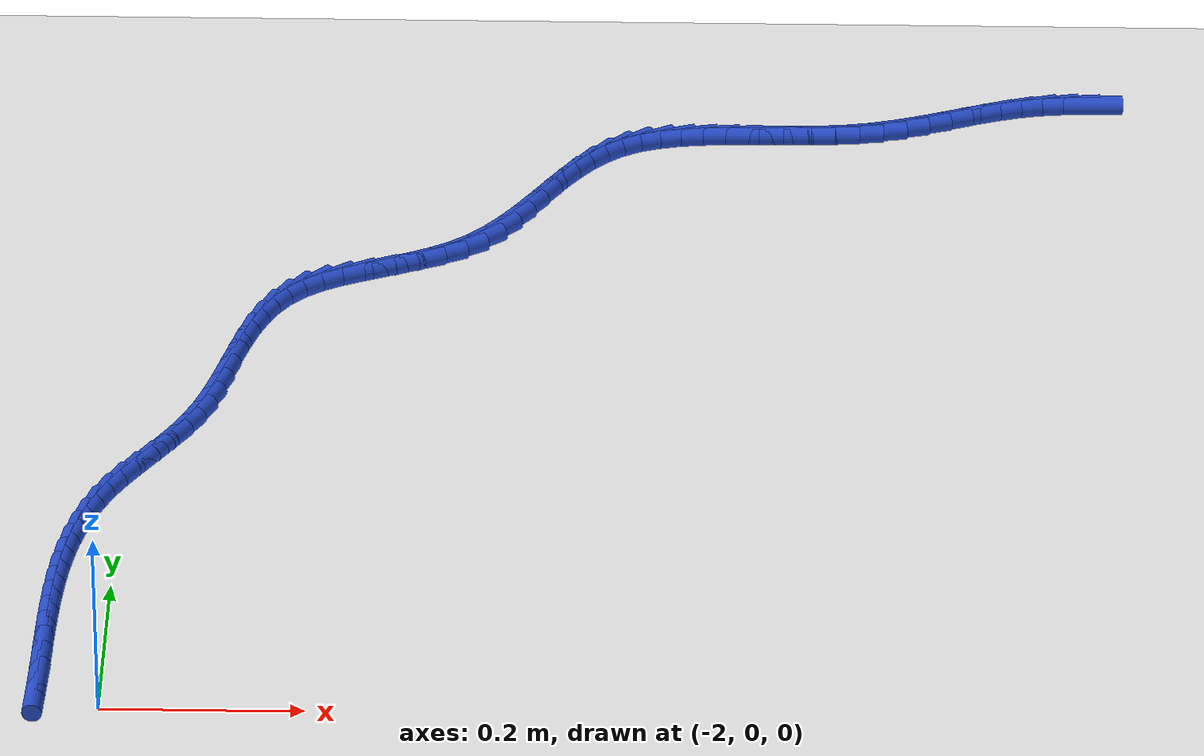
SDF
<sdf version="1.6">
 <world name="default">
  <model name="ground_plane">
   <static>1</static>
   <link name="link">
    <collision name="collision">
     <geometry><plane><normal>0 0 1</normal><size>100 100</size></plane></geometry>
     <surface><friction><ode><mu>100</mu><mu2>50</mu2></ode></friction></surface>
    </collision>
    <visual name="visual">
     <cast_shadows>0</cast_shadows>
     <geometry><plane><normal>0 0 1</normal><size>100 100</size></plane></geometry>
     <material>
      <script><uri>file://media/materials/scripts/gazebo.material</uri><name>Gazebo/WhiteGlow</name></script>
     </material>
    </visual>
   </link>
  </model>
  <model name="line">
   <link name="link_69">
    <pose>-1.024966327656244 1.0643499774241265 0.01 0 1.57 0.026791510075852655</pose>
    <collision name="collision">
     <geometry><cylinder><radius>0.01</radius><length>0.08</length></cylinder></geometry>
    </collision>
    <visual name="visual">
     <material>
      <script><name>Gazebo/Blue</name><uri>file://media/materials/scripts/gazebo.material</uri></script>
     </material>
     <geometry><cylinder><radius>0.01</radius><length>0.08</length></cylinder></geometry>
    </visual>
   </link>
   <link name="link_70">
    <pose>-1.0480095541099272 1.0637324668367272 0.01 0 1.57 0.10267569243208971</pose>
    <collision name="collision">
     <geometry><cylinder><radius>0.01</radius><length>0.08</length></cylinder></geometry>
    </collision>
    <visual name="visual">
     <material>
      <script><name>Gazebo/Blue</name><uri>file://media/materials/scripts/gazebo.material</uri></script>
     </material>
     <geometry><cylinder><radius>0.01</radius><length>0.08</length></cylinder></geometry>
    </visual>
   </link>
   <link name="link_71">
    <pose>-1.070793348231914 1.061384869505074 0.01 0 1.57 0.1888888307071484</pose>
    <collision name="collision">
     <geometry><cylinder><radius>0.01</radius><length>0.08</length></cylinder></geometry>
    </collision>
    <visual name="visual">
     <material>
      <script><name>Gazebo/Blue</name><uri>file://media/materials/scripts/gazebo.material</uri></script>
     </material>
     <geometry><cylinder><radius>0.01</radius><length>0.08</length></cylinder></geometry>
    </visual>
   </link>
   <link name="link_72">
    <pose>-1.0933150167962022 1.057079451329948 0.01 0 1.57 0.26054772362553597</pose>
    <collision name="collision">
     <geometry><cylinder><radius>0.01</radius><length>0.08</length></cylinder></geometry>
    </collision>
    <visual name="visual">
     <material>
      <script><name>Gazebo/Blue</name><uri>file://media/materials/scripts/gazebo.material</uri></script>
     </material>
     <geometry><cylinder><radius>0.01</radius><length>0.08</length></cylinder></geometry>
    </visual>
   </link>
   <link name="link_73">
    <pose>-1.115662799674517 1.0511213511318878 0.01 0 1.57 0.3091893438283618</pose>
    <collision name="collision">
     <geometry><cylinder><radius>0.01</radius><length>0.08</length></cylinder></geometry>
    </collision>
    <visual name="visual">
     <material>
      <script><name>Gazebo/Blue</name><uri>file://media/materials/scripts/gazebo.material</uri></script>
     </material>
     <geometry><cylinder><radius>0.01</radius><length>0.08</length></cylinder></geometry>
    </visual>
   </link>
   <link name="link_74">
    <pose>-1.13795638952707 1.0440000227900315 0.01 0 1.57 0.3354484398593318</pose>
    <collision name="collision">
     <geometry><cylinder><radius>0.01</radius><length>0.08</length></cylinder></geometry>
    </collision>
    <visual name="visual">
     <material>
      <script><name>Gazebo/Blue</name><uri>file://media/materials/scripts/gazebo.material</uri></script>
     </material>
     <geometry><cylinder><radius>0.01</radius><length>0.08</length></cylinder></geometry>
    </visual>
   </link>
   <link name="link_75">
    <pose>-1.160315509272435 1.0362050974991623 0.01 0 1.57 0.34016222303935134</pose>
    <collision name="collision">
     <geometry><cylinder><radius>0.01</radius><length>0.08</length></cylinder></geometry>
    </collision>
    <visual name="visual">
     <material>
      <script><name>Gazebo/Blue</name><uri>file://media/materials/scripts/gazebo.material</uri></script>
     </material>
     <geometry><cylinder><radius>0.01</radius><length>0.08</length></cylinder></geometry>
    </visual>
   </link>
   <link name="link_76">
    <pose>-1.1828598818291856 1.0282262064540642 0.01 0 1.57 0.32398520939989317</pose>
    <collision name="collision">
     <geometry><cylinder><radius>0.01</radius><length>0.08</length></cylinder></geometry>
    </collision>
    <visual name="visual">
     <material>
      <script><name>Gazebo/Blue</name><uri>file://media/materials/scripts/gazebo.material</uri></script>
     </material>
     <geometry><cylinder><radius>0.01</radius><length>0.08</length></cylinder></geometry>
    </visual>
   </link>
   <link name="link_77">
    <pose>-1.2057092301158945 1.020552980849521 0.01 0 1.57 0.28734096503087814</pose>
    <collision name="collision">
     <geometry><cylinder><radius>0.01</radius><length>0.08</length></cylinder></geometry>
    </collision>
    <visual name="visual">
     <material>
      <script><name>Gazebo/Blue</name><uri>file://media/materials/scripts/gazebo.material</uri></script>
     </material>
     <geometry><cylinder><radius>0.01</radius><length>0.08</length></cylinder></geometry>
    </visual>
   </link>
   <link name="link_78">
    <pose>-1.2289832770511357 1.0136750518803168 0.01 0 1.57 0.23063931927939935</pose>
    <collision name="collision">
     <geometry><cylinder><radius>0.01</radius><length>0.08</length></cylinder></geometry>
    </collision>
    <visual name="visual">
     <material>
      <script><name>Gazebo/Blue</name><uri>file://media/materials/scripts/gazebo.material</uri></script>
     </material>
     <geometry><cylinder><radius>0.01</radius><length>0.08</length></cylinder></geometry>
    </visual>
   </link>
   <link name="link_79">
    <pose>-1.252801745553482 1.0080820507412351 0.01 0 1.57 0.15649613241592322</pose>
    <collision name="collision">
     <geometry><cylinder><radius>0.01</radius><length>0.08</length></cylinder></geometry>
    </collision>
    <visual name="visual">
     <material>
      <script><name>Gazebo/Blue</name><uri>file://media/materials/scripts/gazebo.material</uri></script>
     </material>
     <geometry><cylinder><radius>0.01</radius><length>0.08</length></cylinder></geometry>
    </visual>
   </link>
   <link name="link_80">
    <pose>-1.2772688846782452 1.0042214699730987 0.01 0 1.57 0.0888577264555757</pose>
    <collision name="collision">
     <geometry><cylinder><radius>0.01</radius><length>0.08</length></cylinder></geometry>
    </collision>
    <visual name="visual">
     <material>
      <script><name>Gazebo/Blue</name><uri>file://media/materials/scripts/gazebo.material</uri></script>
     </material>
     <geometry><cylinder><radius>0.01</radius><length>0.08</length></cylinder></geometry>
    </visual>
   </link>
   <link name="link_81">
    <pose>-1.3022875977666921 1.0019924944816272 0.01 0 1.57 0.04267920627427439</pose>
    <collision name="collision">
     <geometry><cylinder><radius>0.01</radius><length>0.08</length></cylinder></geometry>
    </collision>
    <visual name="visual">
     <material>
      <script><name>Gazebo/Blue</name><uri>file://media/materials/scripts/gazebo.material</uri></script>
     </material>
     <geometry><cylinder><radius>0.01</radius><length>0.08</length></cylinder></geometry>
    </visual>
   </link>
   <link name="link_82">
    <pose>-1.3276199124928658 1.0009106744659109 0.01 0 1.57 0.016805935759140193</pose>
    <collision name="collision">
     <geometry><cylinder><radius>0.01</radius><length>0.08</length></cylinder></geometry>
    </collision>
    <visual name="visual">
     <material>
      <script><name>Gazebo/Blue</name><uri>file://media/materials/scripts/gazebo.material</uri></script>
     </material>
     <geometry><cylinder><radius>0.01</radius><length>0.08</length></cylinder></geometry>
    </visual>
   </link>
   <link name="link_83">
    <pose>-1.3530249623427748 1.0004836786292584 0.01 0 1.57 0.010480410688180071</pose>
    <collision name="collision">
     <geometry><cylinder><radius>0.01</radius><length>0.08</length></cylinder></geometry>
    </collision>
    <visual name="visual">
     <material>
      <script><name>Gazebo/Blue</name><uri>file://media/materials/scripts/gazebo.material</uri></script>
     </material>
     <geometry><cylinder><radius>0.01</radius><length>0.08</length></cylinder></geometry>
    </visual>
   </link>
   <link name="link_84">
    <pose>-1.3782618808024298 1.0002191756749788 0.01 0 1.57 0.023933856140754307</pose>
    <collision name="collision">
     <geometry><cylinder><radius>0.01</radius><length>0.08</length></cylinder></geometry>
    </collision>
    <visual name="visual">
     <material>
      <script><name>Gazebo/Blue</name><uri>file://media/materials/scripts/gazebo.material</uri></script>
     </material>
     <geometry><cylinder><radius>0.01</radius><length>0.08</length></cylinder></geometry>
    </visual>
   </link>
   <link name="link_85">
    <pose>-1.4030898013578403 0.9996248343063804 0.01 0 1.57 0.05851974725280542</pose>
    <collision name="collision">
     <geometry><cylinder><radius>0.01</radius><length>0.08</length></cylinder></geometry>
    </collision>
    <visual name="visual">
     <material>
      <script><name>Gazebo/Blue</name><uri>file://media/materials/scripts/gazebo.material</uri></script>
     </material>
     <geometry><cylinder><radius>0.01</radius><length>0.08</length></cylinder></geometry>
    </visual>
   </link>
   <link name="link_86">
    <pose>-1.427267857495016 0.998208323226772 0.01 0 1.57 0.11674136899573795</pose>
    <collision name="collision">
     <geometry><cylinder><radius>0.01</radius><length>0.08</length></cylinder></geometry>
    </collision>
    <visual name="visual">
     <material>
      <script><name>Gazebo/Blue</name><uri>file://media/materials/scripts/gazebo.material</uri></script>
     </material>
     <geometry><cylinder><radius>0.01</radius><length>0.08</length></cylinder></geometry>
    </visual>
   </link>
   <link name="link_87">
    <pose>-1.4505551826999667 0.9954773111394623 0.01 0 1.57 0.20202187500401422</pose>
    <collision name="collision">
     <geometry><cylinder><radius>0.01</radius><length>0.08</length></cylinder></geometry>
    </collision>
    <visual name="visual">
     <material>
      <script><name>Gazebo/Blue</name><uri>file://media/materials/scripts/gazebo.material</uri></script>
     </material>
     <geometry><cylinder><radius>0.01</radius><length>0.08</length></cylinder></geometry>
    </visual>
   </link>
   <link name="link_88">
    <pose>-1.4727109104587022 0.99093946674776 0.01 0 1.57 0.3178157226432535</pose>
    <collision name="collision">
     <geometry><cylinder><radius>0.01</radius><length>0.08</length></cylinder></geometry>
    </collision>
    <visual name="visual">
     <material>
      <script><name>Gazebo/Blue</name><uri>file://media/materials/scripts/gazebo.material</uri></script>
     </material>
     <geometry><cylinder><radius>0.01</radius><length>0.08</length></cylinder></geometry>
    </visual>
   </link>
   <link name="link_89">
    <pose>-1.4934941742572316 0.9841024587549738 0.01 0 1.57 0.4654628126858873</pose>
    <collision name="collision">
     <geometry><cylinder><radius>0.01</radius><length>0.08</length></cylinder></geometry>
    </collision>
    <visual name="visual">
     <material>
      <script><name>Gazebo/Blue</name><uri>file://media/materials/scripts/gazebo.material</uri></script>
     </material>
     <geometry><cylinder><radius>0.01</radius><length>0.08</length></cylinder></geometry>
    </visual>
   </link>
   <link name="link_90">
    <pose>-1.5126641075815659 0.9744739558644124 0.01 0 1.57 0.6335347217561635</pose>
    <collision name="collision">
     <geometry><cylinder><radius>0.01</radius><length>0.08</length></cylinder></geometry>
    </collision>
    <visual name="visual">
     <material>
      <script><name>Gazebo/Blue</name><uri>file://media/materials/scripts/gazebo.material</uri></script>
     </material>
     <geometry><cylinder><radius>0.01</radius><length>0.08</length></cylinder></geometry>
    </visual>
   </link>
   <link name="link_91">
    <pose>-1.5300584234287136 0.9616970907524526 0.01 0 1.57 0.7757689154828349</pose>
    <collision name="collision">
     <geometry><cylinder><radius>0.01</radius><length>0.08</length></cylinder></geometry>
    </collision>
    <visual name="visual">
     <material>
      <script><name>Gazebo/Blue</name><uri>file://media/materials/scripts/gazebo.material</uri></script>
     </material>
     <geometry><cylinder><radius>0.01</radius><length>0.08</length></cylinder></geometry>
    </visual>
   </link>
   <link name="link_92">
    <pose>-1.54592910069723 0.9461291530584748 0.01 0 1.57 0.8784203698464145</pose>
    <collision name="collision">
     <geometry><cylinder><radius>0.01</radius><length>0.08</length></cylinder></geometry>
    </collision>
    <visual name="visual">
     <material>
      <script><name>Gazebo/Blue</name><uri>file://media/materials/scripts/gazebo.material</uri></script>
     </material>
     <geometry><cylinder><radius>0.01</radius><length>0.08</length></cylinder></geometry>
    </visual>
   </link>
   <link name="link_93">
    <pose>-1.5606641431018593 0.9283619269077942 0.01 0 1.57 0.9454900321794707</pose>
    <collision name="collision">
     <geometry><cylinder><radius>0.01</radius><length>0.08</length></cylinder></geometry>
    </collision>
    <visual name="visual">
     <material>
      <script><name>Gazebo/Blue</name><uri>file://media/materials/scripts/gazebo.material</uri></script>
     </material>
     <geometry><cylinder><radius>0.01</radius><length>0.08</length></cylinder></geometry>
    </visual>
   </link>
   <link name="link_94">
    <pose>-1.5746516349002806 0.9089873352744621 0.01 0 1.57 0.9816175099446475</pose>
    <collision name="collision">
     <geometry><cylinder><radius>0.01</radius><length>0.08</length></cylinder></geometry>
    </collision>
    <visual name="visual">
     <material>
      <script><name>Gazebo/Blue</name><uri>file://media/materials/scripts/gazebo.material</uri></script>
     </material>
     <geometry><cylinder><radius>0.01</radius><length>0.08</length></cylinder></geometry>
    </visual>
   </link>
   <link name="link_95">
    <pose>-1.588279660350172 0.8885973011325302 0.01 0 1.57 0.9901155798187474</pose>
    <collision name="collision">
     <geometry><cylinder><radius>0.01</radius><length>0.08</length></cylinder></geometry>
    </collision>
    <visual name="visual">
     <material>
      <script><name>Gazebo/Blue</name><uri>file://media/materials/scripts/gazebo.material</uri></script>
     </material>
     <geometry><cylinder><radius>0.01</radius><length>0.08</length></cylinder></geometry>
    </visual>
   </link>
   <link name="link_96">
    <pose>-1.601936303709213 0.8677837474560517 0.01 0 1.57 0.972473108362709</pose>
    <collision name="collision">
     <geometry><cylinder><radius>0.01</radius><length>0.08</length></cylinder></geometry>
    </collision>
    <visual name="visual">
     <material>
      <script><name>Gazebo/Blue</name><uri>file://media/materials/scripts/gazebo.material</uri></script>
     </material>
     <geometry><cylinder><radius>0.01</radius><length>0.08</length></cylinder></geometry>
    </visual>
   </link>
   <link name="link_97">
    <pose>-1.6160096492350815 0.8471385972190775 0.01 0 1.57 0.9284383233214376</pose>
    <collision name="collision">
     <geometry><cylinder><radius>0.01</radius><length>0.08</length></cylinder></geometry>
    </collision>
    <visual name="visual">
     <material>
      <script><name>Gazebo/Blue</name><uri>file://media/materials/scripts/gazebo.material</uri></script>
     </material>
     <geometry><cylinder><radius>0.01</radius><length>0.08</length></cylinder></geometry>
    </visual>
   </link>
   <link name="link_98">
    <pose>-1.6308877811854559 0.8272537733956599 0.01 0 1.57 0.8564148735485906</pose>
    <collision name="collision">
     <geometry><cylinder><radius>0.01</radius><length>0.08</length></cylinder></geometry>
    </collision>
    <visual name="visual">
     <material>
      <script><name>Gazebo/Blue</name><uri>file://media/materials/scripts/gazebo.material</uri></script>
     </material>
     <geometry><cylinder><radius>0.01</radius><length>0.08</length></cylinder></geometry>
    </visual>
   </link>
   <link name="link_99">
    <pose>-1.6469587838180153 0.8087211989598504 0.01 0 1.57 0.7543466889783089</pose>
    <collision name="collision">
     <geometry><cylinder><radius>0.01</radius><length>0.08</length></cylinder></geometry>
    </collision>
    <visual name="visual">
     <material>
      <script><name>Gazebo/Blue</name><uri>file://media/materials/scripts/gazebo.material</uri></script>
     </material>
     <geometry><cylinder><radius>0.01</radius><length>0.08</length></cylinder></geometry>
    </visual>
   </link>
   <link name="link_100">
    <pose>-1.664610741390439 0.7921327968857014 0.01 0 1.57 0.6228536616621777</pose>
    <collision name="collision">
     <geometry><cylinder><radius>0.01</radius><length>0.08</length></cylinder></geometry>
    </collision>
    <visual name="visual">
     <material>
      <script><name>Gazebo/Blue</name><uri>file://media/materials/scripts/gazebo.material</uri></script>
     </material>
     <geometry><cylinder><radius>0.01</radius><length>0.08</length></cylinder></geometry>
    </visual>
   </link>
   <link name="link_101">
    <pose>-1.6842115002194564 0.7780550244476622 0.01 0 1.57 0.497470086878927</pose>
    <collision name="collision">
     <geometry><cylinder><radius>0.01</radius><length>0.08</length></cylinder></geometry>
    </collision>
    <visual name="visual">
     <material>
      <script><name>Gazebo/Blue</name><uri>file://media/materials/scripts/gazebo.material</uri></script>
     </material>
     <geometry><cylinder><radius>0.01</radius><length>0.08</length></cylinder></geometry>
    </visual>
   </link>
   <link name="link_102">
    <pose>-1.7056287504908847 0.7664249850833975 0.01 0 1.57 0.41317296959928274</pose>
    <collision name="collision">
     <geometry><cylinder><radius>0.01</radius><length>0.08</length></cylinder></geometry>
    </collision>
    <visual name="visual">
     <material>
      <script><name>Gazebo/Blue</name><uri>file://media/materials/scripts/gazebo.material</uri></script>
     </material>
     <geometry><cylinder><radius>0.01</radius><length>0.08</length></cylinder></geometry>
    </visual>
   </link>
   <link name="link_103">
    <pose>-1.7282099633938366 0.7565251829938393 0.01 0 1.57 0.36887653105125884</pose>
    <collision name="collision">
     <geometry><cylinder><radius>0.01</radius><length>0.08</length></cylinder></geometry>
    </collision>
    <visual name="visual">
     <material>
      <script><name>Gazebo/Blue</name><uri>file://media/materials/scripts/gazebo.material</uri></script>
     </material>
     <geometry><cylinder><radius>0.01</radius><length>0.08</length></cylinder></geometry>
    </visual>
   </link>
   <link name="link_104">
    <pose>-1.7512783576575346 0.7476076051519172 0.01 0 1.57 0.36274304321403195</pose>
    <collision name="collision">
     <geometry><cylinder><radius>0.01</radius><length>0.08</length></cylinder></geometry>
    </collision>
    <visual name="visual">
     <material>
      <script><name>Gazebo/Blue</name><uri>file://media/materials/scripts/gazebo.material</uri></script>
     </material>
     <geometry><cylinder><radius>0.01</radius><length>0.08</length></cylinder></geometry>
    </visual>
   </link>
   <link name="link_105">
    <pose>-1.7741571520112 0.7389242385305604 0.01 0 1.57 0.3957711940820424</pose>
    <collision name="collision">
     <geometry><cylinder><radius>0.01</radius><length>0.08</length></cylinder></geometry>
    </collision>
    <visual name="visual">
     <material>
      <script><name>Gazebo/Blue</name><uri>file://media/materials/scripts/gazebo.material</uri></script>
     </material>
     <geometry><cylinder><radius>0.01</radius><length>0.08</length></cylinder></geometry>
    </visual>
   </link>
   <link name="link_106">
    <pose>-1.7961695651840552 0.7297270701026988 0.01 0 1.57 0.47237769384059136</pose>
    <collision name="collision">
     <geometry><cylinder><radius>0.01</radius><length>0.08</length></cylinder></geometry>
    </collision>
    <visual name="visual">
     <material>
      <script><name>Gazebo/Blue</name><uri>file://media/materials/scripts/gazebo.material</uri></script>
     </material>
     <geometry><cylinder><radius>0.01</radius><length>0.08</length></cylinder></geometry>
    </visual>
   </link>
   <link name="link_107">
    <pose>-1.8166388159053217 0.7192680868412618 0.01 0 1.57 0.59939463351213</pose>
    <collision name="collision">
     <geometry><cylinder><radius>0.01</radius><length>0.08</length></cylinder></geometry>
    </collision>
    <visual name="visual">
     <material>
      <script><name>Gazebo/Blue</name><uri>file://media/materials/scripts/gazebo.material</uri></script>
     </material>
     <geometry><cylinder><radius>0.01</radius><length>0.08</length></cylinder></geometry>
    </visual>
   </link>
   <link name="link_108">
    <pose>-1.834888122904222 0.706799275719179 0.01 0 1.57 0.7742614106932107</pose>
    <collision name="collision">
     <geometry><cylinder><radius>0.01</radius><length>0.08</length></cylinder></geometry>
    </collision>
    <visual name="visual">
     <material>
      <script><name>Gazebo/Blue</name><uri>file://media/materials/scripts/gazebo.material</uri></script>
     </material>
     <geometry><cylinder><radius>0.01</radius><length>0.08</length></cylinder></geometry>
    </visual>
   </link>
   <link name="link_109">
    <pose>-1.8503476448450074 0.6916803128811001 0.01 0 1.57 0.9427561781532198</pose>
    <collision name="collision">
     <geometry><cylinder><radius>0.01</radius><length>0.08</length></cylinder></geometry>
    </collision>
    <visual name="visual">
     <material>
      <script><name>Gazebo/Blue</name><uri>file://media/materials/scripts/gazebo.material</uri></script>
     </material>
     <geometry><cylinder><radius>0.01</radius><length>0.08</length></cylinder></geometry>
    </visual>
   </link>
   <link name="link_110">
    <pose>-1.8631796987374758 0.6740081624247498 0.01 0 1.57 1.0767948330691117</pose>
    <collision name="collision">
     <geometry><cylinder><radius>0.01</radius><length>0.08</length></cylinder></geometry>
    </collision>
    <visual name="visual">
     <material>
      <script><name>Gazebo/Blue</name><uri>file://media/materials/scripts/gazebo.material</uri></script>
     </material>
     <geometry><cylinder><radius>0.01</radius><length>0.08</length></cylinder></geometry>
    </visual>
   </link>
   <link name="link_111">
    <pose>-1.8738532927566922 0.6541886283358946 0.01 0 1.57 1.1759331215748265</pose>
    <collision name="collision">
     <geometry><cylinder><radius>0.01</radius><length>0.08</length></cylinder></geometry>
    </collision>
    <visual name="visual">
     <material>
      <script><name>Gazebo/Blue</name><uri>file://media/materials/scripts/gazebo.material</uri></script>
     </material>
     <geometry><cylinder><radius>0.01</radius><length>0.08</length></cylinder></geometry>
    </visual>
   </link>
   <link name="link_112">
    <pose>-1.8828384770104294 0.6326285638329372 0.01 0 1.57 1.2437254502523192</pose>
    <collision name="collision">
     <geometry><cylinder><radius>0.01</radius><length>0.08</length></cylinder></geometry>
    </collision>
    <visual name="visual">
     <material>
      <script><name>Gazebo/Blue</name><uri>file://media/materials/scripts/gazebo.material</uri></script>
     </material>
     <geometry><cylinder><radius>0.01</radius><length>0.08</length></cylinder></geometry>
    </visual>
   </link>
   <link name="link_113">
    <pose>-1.8906053016064577 0.609734822134279 0.01 0 1.57 1.2842632781059296</pose>
    <collision name="collision">
     <geometry><cylinder><radius>0.01</radius><length>0.08</length></cylinder></geometry>
    </collision>
    <visual name="visual">
     <material>
      <script><name>Gazebo/Blue</name><uri>file://media/materials/scripts/gazebo.material</uri></script>
     </material>
     <geometry><cylinder><radius>0.01</radius><length>0.08</length></cylinder></geometry>
    </visual>
   </link>
   <link name="link_114">
    <pose>-1.897623816652547 0.585914256458323 0.01 0 1.57 1.3006507830170102</pose>
    <collision name="collision">
     <geometry><cylinder><radius>0.01</radius><length>0.08</length></cylinder></geometry>
    </collision>
    <visual name="visual">
     <material>
      <script><name>Gazebo/Blue</name><uri>file://media/materials/scripts/gazebo.material</uri></script>
     </material>
     <geometry><cylinder><radius>0.01</radius><length>0.08</length></cylinder></geometry>
    </visual>
   </link>
   <link name="link_115">
    <pose>-1.9043640722564683 0.5615737200234711 0.01 0 1.57 1.294566405140646</pose>
    <collision name="collision">
     <geometry><cylinder><radius>0.01</radius><length>0.08</length></cylinder></geometry>
    </collision>
    <visual name="visual">
     <material>
      <script><name>Gazebo/Blue</name><uri>file://media/materials/scripts/gazebo.material</uri></script>
     </material>
     <geometry><cylinder><radius>0.01</radius><length>0.08</length></cylinder></geometry>
    </visual>
   </link>
   <link name="link_116">
    <pose>-1.911296118525992 0.5371200660481251 0.01 0 1.57 1.2662564430949506</pose>
    <collision name="collision">
     <geometry><cylinder><radius>0.01</radius><length>0.08</length></cylinder></geometry>
    </collision>
    <visual name="visual">
     <material>
      <script><name>Gazebo/Blue</name><uri>file://media/materials/scripts/gazebo.material</uri></script>
     </material>
     <geometry><cylinder><radius>0.01</radius><length>0.08</length></cylinder></geometry>
    </visual>
   </link>
   <link name="link_117">
    <pose>-1.9188900055688896 0.5129601477506873 0.01 0 1.57 1.2146992977883315</pose>
    <collision name="collision">
     <geometry><cylinder><radius>0.01</radius><length>0.08</length></cylinder></geometry>
    </collision>
    <visual name="visual">
     <material>
      <script><name>Gazebo/Blue</name><uri>file://media/materials/scripts/gazebo.material</uri></script>
     </material>
     <geometry><cylinder><radius>0.01</radius><length>0.08</length></cylinder></geometry>
    </visual>
   </link>
   <link name="link_118">
    <pose>-1.9276157834929308 0.4895008183495603 0.01 0 1.57 1.1387168353658497</pose>
    <collision name="collision">
     <geometry><cylinder><radius>0.01</radius><length>0.08</length></cylinder></geometry>
    </collision>
    <visual name="visual">
     <material>
      <script><name>Gazebo/Blue</name><uri>file://media/materials/scripts/gazebo.material</uri></script>
     </material>
     <geometry><cylinder><radius>0.01</radius><length>0.08</length></cylinder></geometry>
    </visual>
   </link>
   <link name="link_119">
    <pose>-1.9379280815732118 0.4671382143531183 0.01 0 1.57 1.059490955812807</pose>
    <collision name="collision">
     <geometry><cylinder><radius>0.01</radius><length>0.08</length></cylinder></geometry>
    </collision>
    <visual name="visual">
     <material>
      <script><name>Gazebo/Blue</name><uri>file://media/materials/scripts/gazebo.material</uri></script>
     </material>
     <geometry><cylinder><radius>0.01</radius><length>0.08</length></cylinder></geometry>
    </visual>
   </link>
   <link name="link_120">
    <pose>-1.9498182049452644 0.44594648508801915 0.01 0 1.57 1.0041744872361391</pose>
    <collision name="collision">
     <geometry><cylinder><radius>0.01</radius><length>0.08</length></cylinder></geometry>
    </collision>
    <visual name="visual">
     <material>
      <script><name>Gazebo/Blue</name><uri>file://media/materials/scripts/gazebo.material</uri></script>
     </material>
     <geometry><cylinder><radius>0.01</radius><length>0.08</length></cylinder></geometry>
    </visual>
   </link>
   <link name="link_121">
    <pose>-1.962744287923892 0.42562925273743885 0.01 0 1.57 0.9752072602138001</pose>
    <collision name="collision">
     <geometry><cylinder><radius>0.01</radius><length>0.08</length></cylinder></geometry>
    </collision>
    <visual name="visual">
     <material>
      <script><name>Gazebo/Blue</name><uri>file://media/materials/scripts/gazebo.material</uri></script>
     </material>
     <geometry><cylinder><radius>0.01</radius><length>0.08</length></cylinder></geometry>
    </visual>
   </link>
   <link name="link_122">
    <pose>-1.9761349882586283 0.40586965474100545 0.01 0 1.57 0.9732283248528412</pose>
    <collision name="collision">
     <geometry><cylinder><radius>0.01</radius><length>0.08</length></cylinder></geometry>
    </collision>
    <visual name="visual">
     <material>
      <script><name>Gazebo/Blue</name><uri>file://media/materials/scripts/gazebo.material</uri></script>
     </material>
     <geometry><cylinder><radius>0.01</radius><length>0.08</length></cylinder></geometry>
    </visual>
   </link>
   <link name="link_123">
    <pose>-1.9894189636990045 0.38635082853834773 0.01 0 1.57 0.9991275695795011</pose>
    <collision name="collision">
     <geometry><cylinder><radius>0.01</radius><length>0.08</length></cylinder></geometry>
    </collision>
    <visual name="visual">
     <material>
      <script><name>Gazebo/Blue</name><uri>file://media/materials/scripts/gazebo.material</uri></script>
     </material>
     <geometry><cylinder><radius>0.01</radius><length>0.08</length></cylinder></geometry>
    </visual>
   </link>
   <link name="link_124">
    <pose>-2.0020248719945544 0.36675591156909326 0.01 0 1.57 1.0540604449103286</pose>
    <collision name="collision">
     <geometry><cylinder><radius>0.01</radius><length>0.08</length></cylinder></geometry>
    </collision>
    <visual name="visual">
     <material>
      <script><name>Gazebo/Blue</name><uri>file://media/materials/scripts/gazebo.material</uri></script>
     </material>
     <geometry><cylinder><radius>0.01</radius><length>0.08</length></cylinder></geometry>
    </visual>
   </link>
   <link name="link_125">
    <pose>-2.0133824018148823 0.34676855507780885 0.01 0 1.57 1.1289198387157233</pose>
    <collision name="collision">
     <geometry><cylinder><radius>0.01</radius><length>0.08</length></cylinder></geometry>
    </collision>
    <visual name="visual">
     <material>
      <script><name>Gazebo/Blue</name><uri>file://media/materials/scripts/gazebo.material</uri></script>
     </material>
     <geometry><cylinder><radius>0.01</radius><length>0.08</length></cylinder></geometry>
    </visual>
   </link>
   <link name="link_126">
    <pose>-2.0231251517695705 0.32617403791041044 0.01 0 1.57 1.2012274211765106</pose>
    <collision name="collision">
     <geometry><cylinder><radius>0.01</radius><length>0.08</length></cylinder></geometry>
    </collision>
    <visual name="visual">
     <material>
      <script><name>Gazebo/Blue</name><uri>file://media/materials/scripts/gazebo.material</uri></script>
     </material>
     <geometry><cylinder><radius>0.01</radius><length>0.08</length></cylinder></geometry>
    </visual>
   </link>
   <link name="link_127">
    <pose>-2.0313346804327317 0.30498089971462206 0.01 0 1.57 1.2670980784526782</pose>
    <collision name="collision">
     <geometry><cylinder><radius>0.01</radius><length>0.08</length></cylinder></geometry>
    </collision>
    <visual name="visual">
     <material>
      <script><name>Gazebo/Blue</name><uri>file://media/materials/scripts/gazebo.material</uri></script>
     </material>
     <geometry><cylinder><radius>0.01</radius><length>0.08</length></cylinder></geometry>
    </visual>
   </link>
   <link name="link_128">
    <pose>-2.0381520895597784 0.2832273561348005 0.01 0 1.57 1.3259250684067325</pose>
    <collision name="collision">
     <geometry><cylinder><radius>0.01</radius><length>0.08</length></cylinder></geometry>
    </collision>
    <visual name="visual">
     <material>
      <script><name>Gazebo/Blue</name><uri>file://media/materials/scripts/gazebo.material</uri></script>
     </material>
     <geometry><cylinder><radius>0.01</radius><length>0.08</length></cylinder></geometry>
    </visual>
   </link>
   <link name="link_129">
    <pose>-2.0437184809061244 0.2609516228153034 0.01 0 1.57 1.3774371981076816</pose>
    <collision name="collision">
     <geometry><cylinder><radius>0.01</radius><length>0.08</length></cylinder></geometry>
    </collision>
    <visual name="visual">
     <material>
      <script><name>Gazebo/Blue</name><uri>file://media/materials/scripts/gazebo.material</uri></script>
     </material>
     <geometry><cylinder><radius>0.01</radius><length>0.08</length></cylinder></geometry>
    </visual>
   </link>
   <link name="link_130">
    <pose>-2.0481749562271827 0.2381919154004878 0.01 0 1.57 1.4216180702756116</pose>
    <collision name="collision">
     <geometry><cylinder><radius>0.01</radius><length>0.08</length></cylinder></geometry>
    </collision>
    <visual name="visual">
     <material>
      <script><name>Gazebo/Blue</name><uri>file://media/materials/scripts/gazebo.material</uri></script>
     </material>
     <geometry><cylinder><radius>0.01</radius><length>0.08</length></cylinder></geometry>
    </visual>
   </link>
   <link name="link_131">
    <pose>-2.051662617278367 0.21498644953471102 0.01 0 1.57 1.4586216206335714</pose>
    <collision name="collision">
     <geometry><cylinder><radius>0.01</radius><length>0.08</length></cylinder></geometry>
    </collision>
    <visual name="visual">
     <material>
      <script><name>Gazebo/Blue</name><uri>file://media/materials/scripts/gazebo.material</uri></script>
     </material>
     <geometry><cylinder><radius>0.01</radius><length>0.08</length></cylinder></geometry>
    </visual>
   </link>
   <link name="link_132">
    <pose>-2.05432256581509 0.19137344086233085 0.01 0 1.57 1.4886983064124437</pose>
    <collision name="collision">
     <geometry><cylinder><radius>0.01</radius><length>0.08</length></cylinder></geometry>
    </collision>
    <visual name="visual">
     <material>
      <script><name>Gazebo/Blue</name><uri>file://media/materials/scripts/gazebo.material</uri></script>
     </material>
     <geometry><cylinder><radius>0.01</radius><length>0.08</length></cylinder></geometry>
    </visual>
   </link>
   <link name="link_133">
    <pose>-2.0562959035927646 0.16739110502770435 0.01 0 1.57 1.5121378098480664</pose>
    <collision name="collision">
     <geometry><cylinder><radius>0.01</radius><length>0.08</length></cylinder></geometry>
    </collision>
    <visual name="visual">
     <material>
      <script><name>Gazebo/Blue</name><uri>file://media/materials/scripts/gazebo.material</uri></script>
     </material>
     <geometry><cylinder><radius>0.01</radius><length>0.08</length></cylinder></geometry>
    </visual>
   </link>
   <link name="link_134">
    <pose>-2.0577237323668056 0.14307765767518887 0.01 0 1.57 1.5292285083894266</pose>
    <collision name="collision">
     <geometry><cylinder><radius>0.01</radius><length>0.08</length></cylinder></geometry>
    </collision>
    <visual name="visual">
     <material>
      <script><name>Gazebo/Blue</name><uri>file://media/materials/scripts/gazebo.material</uri></script>
     </material>
     <geometry><cylinder><radius>0.01</radius><length>0.08</length></cylinder></geometry>
    </visual>
   </link>
   <link name="link_135">
    <pose>-2.058747153892625 0.11847131444914143 0.01 0 1.57 1.5402312411174768</pose>
    <collision name="collision">
     <geometry><cylinder><radius>0.01</radius><length>0.08</length></cylinder></geometry>
    </collision>
    <visual name="visual">
     <material>
      <script><name>Gazebo/Blue</name><uri>file://media/materials/scripts/gazebo.material</uri></script>
     </material>
     <geometry><cylinder><radius>0.01</radius><length>0.08</length></cylinder></geometry>
    </visual>
   </link>
   <link name="link_136">
    <pose>-2.059507269925637 0.09361029099392004 0.01 0 1.57 1.5453641640574944</pose>
    <collision name="collision">
     <geometry><cylinder><radius>0.01</radius><length>0.08</length></cylinder></geometry>
    </collision>
    <visual name="visual">
     <material>
      <script><name>Gazebo/Blue</name><uri>file://media/materials/scripts/gazebo.material</uri></script>
     </material>
     <geometry><cylinder><radius>0.01</radius><length>0.08</length></cylinder></geometry>
    </visual>
   </link>
   <link name="link_137">
    <pose>-2.060145182221254 0.06853280295388169 0.01 0 1.57 1.5447958065846672</pose>
    <collision name="collision">
     <geometry><cylinder><radius>0.01</radius><length>0.08</length></cylinder></geometry>
    </collision>
    <visual name="visual">
     <material>
      <script><name>Gazebo/Blue</name><uri>file://media/materials/scripts/gazebo.material</uri></script>
     </material>
     <geometry><cylinder><radius>0.01</radius><length>0.08</length></cylinder></geometry>
    </visual>
   </link>
   <link name="link_138">
    <pose>-2.0608019925348904 0.043277065973383835 0.01 0 1.57 1.5386441771765715</pose>
    <collision name="collision">
     <geometry><cylinder><radius>0.01</radius><length>0.08</length></cylinder></geometry>
    </collision>
    <visual name="visual">
     <material>
      <script><name>Gazebo/Blue</name><uri>file://media/materials/scripts/gazebo.material</uri></script>
     </material>
     <geometry><cylinder><radius>0.01</radius><length>0.08</length></cylinder></geometry>
    </visual>
   </link>
   <link name="link_139">
    <pose>-2.0616188026219584 0.017881295696783643 0.01 0 1.57 1.5274079431130312</pose>
    <collision name="collision">
     <geometry><cylinder><radius>0.01</radius><length>0.08</length></cylinder></geometry>
    </collision>
    <visual name="visual">
     <material>
      <script><name>Gazebo/Blue</name><uri>file://media/materials/scripts/gazebo.material</uri></script>
     </material>
     <geometry><cylinder><radius>0.01</radius><length>0.08</length></cylinder></geometry>
    </visual>
   </link>
  </model>
 </world>
</sdf>
